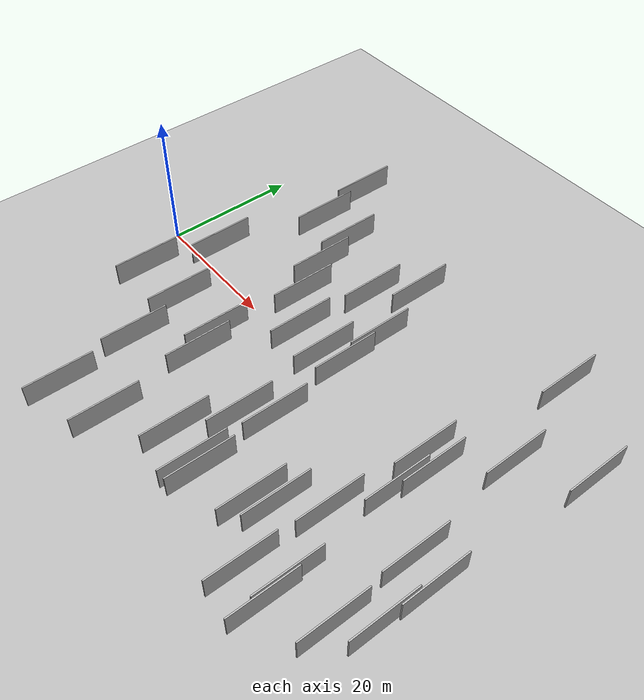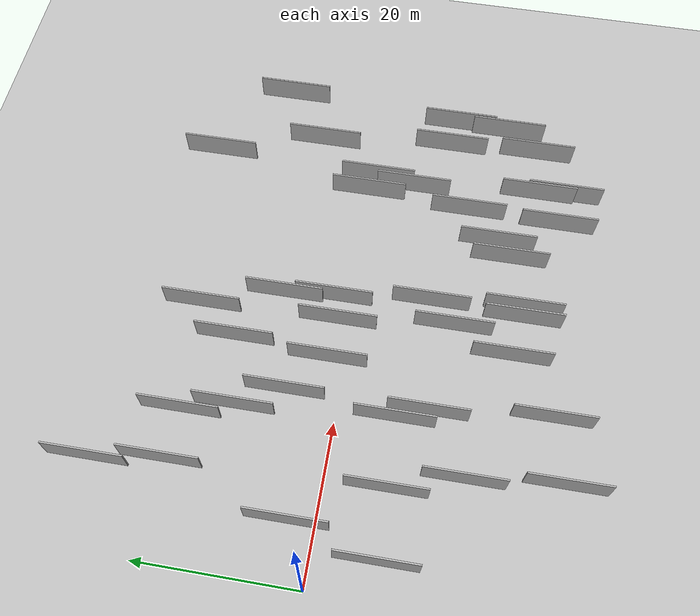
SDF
<?xml version="1.0" encoding="utf-8"?>

<sdf version="1.6">

   <world name="default">

      <gui fullscreen="0">

         <camera name="user_camera">

            <pose>-15 0 4.57585 0 0 0</pose>

            <view_controller>orbit</view_controller>

         </camera>

      </gui>

      <scene>

         <sky>

           <clouds>

             <speed>12</speed>

           </clouds>

         </sky>

         <ambient>0.4 0.4 0.4 1</ambient>

         <background>0.7 0.7 0.7 1</background>

         <shadows>1</shadows>

      </scene>

      <gravity>0 0 -9.8066</gravity>

      <magnetic_field>6e-06 2.3e-05 -4.2e-05</magnetic_field>

      <physics default="0" name="default_physics" type="ode">

         <ode>

            <solver>

               <type>quick</type>

               <iters>10</iters>

               <sor>1.0</sor>

               <use_dynamic_moi_rescaling>0</use_dynamic_moi_rescaling>

            </solver>

            <constraints>

               <cfm>0</cfm>

               <erp>0.2</erp>

               <contact_max_correcting_vel>100</contact_max_correcting_vel>

               <contact_surface_layer>0.001</contact_surface_layer>

            </constraints>

         </ode>

         <max_step_size>0.004</max_step_size>

         <real_time_factor>1</real_time_factor>

         <real_time_update_rate>250</real_time_update_rate>

      </physics>

      <light name="sun" type="directional">

         <cast_shadows>1</cast_shadows>

         <pose>0 0 10 0 0 0</pose>

         <diffuse>0.8 0.8 0.8 1</diffuse>

         <specular>0.2 0.2 0.2 1</specular>

         <attenuation>

            <range>1000</range>

            <constant>0.9</constant>

            <linear>0.01</linear>

            <quadratic>0.001</quadratic>

         </attenuation>

         <direction>-0.5 0.1 -0.9</direction>

      </light>

      <include>

         <name>ground_plane_1</name>

         <uri>model://HANNAS_ground_plane</uri>

         <pose>0 0 0  0 0 0</pose>

      </include>

      <include>

         <name>ground_plane_2</name>

         <uri>model://HANNAS_ground_plane</uri>

         <pose>100 0 0  0 0 0</pose>

      </include>

      <model name="HANNAS_wall_1">

         <static>1</static>

         <pose frame="">37.9664 -9.5065 0.0 0.000000 0.000000 1.570796</pose>

         <link name="link">

            <pose frame="">0 0 2.00 0 0 0</pose>

            <collision name="collision">

               <geometry>

                  <box>

                     <size>10.00 0.2 4.00</size>

                  </box>

               </geometry>

               <max_contacts>10</max_contacts>

               <surface>

                  <contact>

                     <ode/>

                  </contact>

                  <bounce/>

                  <friction>

                     <torsional>

                        <ode/>

                     </torsional>

                     <ode/>

                  </friction>

               </surface>

            </collision>

            <visual name="visual">

               <cast_shadows>0</cast_shadows>

               <geometry>

                  <box>

                     <size>10.00 0.2 4.00</size>

                  </box>

               </geometry>

               <material>

                  <script>

                     <uri>model://HANNAS_wall/materials/scripts</uri>

                     <uri>model://HANNAS_wall/materials/textures</uri>

                     <name>vrc/HANNAS_wall</name>

                  </script>

               </material>

            </visual>

            <self_collide>0</self_collide>

            <enable_wind>0</enable_wind>

            <kinematic>0</kinematic>

         </link>

      </model>

      <model name="HANNAS_wall_2">

         <static>1</static>

         <pose frame="">21.4314 -7.1170 0.0 0.000000 0.000000 1.570796</pose>

         <link name="link">

            <pose frame="">0 0 2.00 0 0 0</pose>

            <collision name="collision">

               <geometry>

                  <box>

                     <size>10.00 0.2 4.00</size>

                  </box>

               </geometry>

               <max_contacts>10</max_contacts>

               <surface>

                  <contact>

                     <ode/>

                  </contact>

                  <bounce/>

                  <friction>

                     <torsional>

                        <ode/>

                     </torsional>

                     <ode/>

                  </friction>

               </surface>

            </collision>

            <visual name="visual">

               <cast_shadows>0</cast_shadows>

               <geometry>

                  <box>

                     <size>10.00 0.2 4.00</size>

                  </box>

               </geometry>

               <material>

                  <script>

                     <uri>model://HANNAS_wall/materials/scripts</uri>

                     <uri>model://HANNAS_wall/materials/textures</uri>

                     <name>vrc/HANNAS_wall</name>

                  </script>

               </material>

            </visual>

            <self_collide>0</self_collide>

            <enable_wind>0</enable_wind>

            <kinematic>0</kinematic>

         </link>

      </model>

      <model name="HANNAS_wall_3">

         <static>1</static>

         <pose frame="">69.0836 14.1878 0.0 0.000000 0.000000 1.570796</pose>

         <link name="link">

            <pose frame="">0 0 2.00 0 0 0</pose>

            <collision name="collision">

               <geometry>

                  <box>

                     <size>10.00 0.2 4.00</size>

                  </box>

               </geometry>

               <max_contacts>10</max_contacts>

               <surface>

                  <contact>

                     <ode/>

                  </contact>

                  <bounce/>

                  <friction>

                     <torsional>

                        <ode/>

                     </torsional>

                     <ode/>

                  </friction>

               </surface>

            </collision>

            <visual name="visual">

               <cast_shadows>0</cast_shadows>

               <geometry>

                  <box>

                     <size>10.00 0.2 4.00</size>

                  </box>

               </geometry>

               <material>

                  <script>

                     <uri>model://HANNAS_wall/materials/scripts</uri>

                     <uri>model://HANNAS_wall/materials/textures</uri>

                     <name>vrc/HANNAS_wall</name>

                  </script>

               </material>

            </visual>

            <self_collide>0</self_collide>

            <enable_wind>0</enable_wind>

            <kinematic>0</kinematic>

         </link>

      </model>

      <model name="HANNAS_wall_4">

         <static>1</static>

         <pose frame="">32.8813 19.3636 0.0 0.000000 0.000000 1.570796</pose>

         <link name="link">

            <pose frame="">0 0 2.00 0 0 0</pose>

            <collision name="collision">

               <geometry>

                  <box>

                     <size>10.00 0.2 4.00</size>

                  </box>

               </geometry>

               <max_contacts>10</max_contacts>

               <surface>

                  <contact>

                     <ode/>

                  </contact>

                  <bounce/>

                  <friction>

                     <torsional>

                        <ode/>

                     </torsional>

                     <ode/>

                  </friction>

               </surface>

            </collision>

            <visual name="visual">

               <cast_shadows>0</cast_shadows>

               <geometry>

                  <box>

                     <size>10.00 0.2 4.00</size>

                  </box>

               </geometry>

               <material>

                  <script>

                     <uri>model://HANNAS_wall/materials/scripts</uri>

                     <uri>model://HANNAS_wall/materials/textures</uri>

                     <name>vrc/HANNAS_wall</name>

                  </script>

               </material>

            </visual>

            <self_collide>0</self_collide>

            <enable_wind>0</enable_wind>

            <kinematic>0</kinematic>

         </link>

      </model>

      <model name="HANNAS_wall_5">

         <static>1</static>

         <pose frame="">36.5954 2.9048 0.0 0.000000 0.000000 1.570796</pose>

         <link name="link">

            <pose frame="">0 0 2.00 0 0 0</pose>

            <collision name="collision">

               <geometry>

                  <box>

                     <size>10.00 0.2 4.00</size>

                  </box>

               </geometry>

               <max_contacts>10</max_contacts>

               <surface>

                  <contact>

                     <ode/>

                  </contact>

                  <bounce/>

                  <friction>

                     <torsional>

                        <ode/>

                     </torsional>

                     <ode/>

                  </friction>

               </surface>

            </collision>

            <visual name="visual">

               <cast_shadows>0</cast_shadows>

               <geometry>

                  <box>

                     <size>10.00 0.2 4.00</size>

                  </box>

               </geometry>

               <material>

                  <script>

                     <uri>model://HANNAS_wall/materials/scripts</uri>

                     <uri>model://HANNAS_wall/materials/textures</uri>

                     <name>vrc/HANNAS_wall</name>

                  </script>

               </material>

            </visual>

            <self_collide>0</self_collide>

            <enable_wind>0</enable_wind>

            <kinematic>0</kinematic>

         </link>

      </model>

      <model name="HANNAS_wall_6">

         <static>1</static>

         <pose frame="">52.7648 -12.7446 0.0 0.000000 0.000000 1.570796</pose>

         <link name="link">

            <pose frame="">0 0 2.00 0 0 0</pose>

            <collision name="collision">

               <geometry>

                  <box>

                     <size>10.00 0.2 4.00</size>

                  </box>

               </geometry>

               <max_contacts>10</max_contacts>

               <surface>

                  <contact>

                     <ode/>

                  </contact>

                  <bounce/>

                  <friction>

                     <torsional>

                        <ode/>

                     </torsional>

                     <ode/>

                  </friction>

               </surface>

            </collision>

            <visual name="visual">

               <cast_shadows>0</cast_shadows>

               <geometry>

                  <box>

                     <size>10.00 0.2 4.00</size>

                  </box>

               </geometry>

               <material>

                  <script>

                     <uri>model://HANNAS_wall/materials/scripts</uri>

                     <uri>model://HANNAS_wall/materials/textures</uri>

                     <name>vrc/HANNAS_wall</name>

                  </script>

               </material>

            </visual>

            <self_collide>0</self_collide>

            <enable_wind>0</enable_wind>

            <kinematic>0</kinematic>

         </link>

      </model>

      <model name="HANNAS_wall_7">

         <static>1</static>

         <pose frame="">28.8854 14.2022 0.0 0.000000 0.000000 1.570796</pose>

         <link name="link">

            <pose frame="">0 0 2.00 0 0 0</pose>

            <collision name="collision">

               <geometry>

                  <box>

                     <size>10.00 0.2 4.00</size>

                  </box>

               </geometry>

               <max_contacts>10</max_contacts>

               <surface>

                  <contact>

                     <ode/>

                  </contact>

                  <bounce/>

                  <friction>

                     <torsional>

                        <ode/>

                     </torsional>

                     <ode/>

                  </friction>

               </surface>

            </collision>

            <visual name="visual">

               <cast_shadows>0</cast_shadows>

               <geometry>

                  <box>

                     <size>10.00 0.2 4.00</size>

                  </box>

               </geometry>

               <material>

                  <script>

                     <uri>model://HANNAS_wall/materials/scripts</uri>

                     <uri>model://HANNAS_wall/materials/textures</uri>

                     <name>vrc/HANNAS_wall</name>

                  </script>

               </material>

            </visual>

            <self_collide>0</self_collide>

            <enable_wind>0</enable_wind>

            <kinematic>0</kinematic>

         </link>

      </model>

      <model name="HANNAS_wall_8">

         <static>1</static>

         <pose frame="">36.0626 9.2500 0.0 0.000000 0.000000 1.570796</pose>

         <link name="link">

            <pose frame="">0 0 2.00 0 0 0</pose>

            <collision name="collision">

               <geometry>

                  <box>

                     <size>10.00 0.2 4.00</size>

                  </box>

               </geometry>

               <max_contacts>10</max_contacts>

               <surface>

                  <contact>

                     <ode/>

                  </contact>

                  <bounce/>

                  <friction>

                     <torsional>

                        <ode/>

                     </torsional>

                     <ode/>

                  </friction>

               </surface>

            </collision>

            <visual name="visual">

               <cast_shadows>0</cast_shadows>

               <geometry>

                  <box>

                     <size>10.00 0.2 4.00</size>

                  </box>

               </geometry>

               <material>

                  <script>

                     <uri>model://HANNAS_wall/materials/scripts</uri>

                     <uri>model://HANNAS_wall/materials/textures</uri>

                     <name>vrc/HANNAS_wall</name>

                  </script>

               </material>

            </visual>

            <self_collide>0</self_collide>

            <enable_wind>0</enable_wind>

            <kinematic>0</kinematic>

         </link>

      </model>

      <model name="HANNAS_wall_9">

         <static>1</static>

         <pose frame="">63.4253 -9.2797 0.0 0.000000 0.000000 1.570796</pose>

         <link name="link">

            <pose frame="">0 0 2.00 0 0 0</pose>

            <collision name="collision">

               <geometry>

                  <box>

                     <size>10.00 0.2 4.00</size>

                  </box>

               </geometry>

               <max_contacts>10</max_contacts>

               <surface>

                  <contact>

                     <ode/>

                  </contact>

                  <bounce/>

                  <friction>

                     <torsional>

                        <ode/>

                     </torsional>

                     <ode/>

                  </friction>

               </surface>

            </collision>

            <visual name="visual">

               <cast_shadows>0</cast_shadows>

               <geometry>

                  <box>

                     <size>10.00 0.2 4.00</size>

                  </box>

               </geometry>

               <material>

                  <script>

                     <uri>model://HANNAS_wall/materials/scripts</uri>

                     <uri>model://HANNAS_wall/materials/textures</uri>

                     <name>vrc/HANNAS_wall</name>

                  </script>

               </material>

            </visual>

            <self_collide>0</self_collide>

            <enable_wind>0</enable_wind>

            <kinematic>0</kinematic>

         </link>

      </model>

      <model name="HANNAS_wall_10">

         <static>1</static>

         <pose frame="">22.8032 6.6137 0.0 0.000000 0.000000 1.570796</pose>

         <link name="link">

            <pose frame="">0 0 2.00 0 0 0</pose>

            <collision name="collision">

               <geometry>

                  <box>

                     <size>10.00 0.2 4.00</size>

                  </box>

               </geometry>

               <max_contacts>10</max_contacts>

               <surface>

                  <contact>

                     <ode/>

                  </contact>

                  <bounce/>

                  <friction>

                     <torsional>

                        <ode/>

                     </torsional>

                     <ode/>

                  </friction>

               </surface>

            </collision>

            <visual name="visual">

               <cast_shadows>0</cast_shadows>

               <geometry>

                  <box>

                     <size>10.00 0.2 4.00</size>

                  </box>

               </geometry>

               <material>

                  <script>

                     <uri>model://HANNAS_wall/materials/scripts</uri>

                     <uri>model://HANNAS_wall/materials/textures</uri>

                     <name>vrc/HANNAS_wall</name>

                  </script>

               </material>

            </visual>

            <self_collide>0</self_collide>

            <enable_wind>0</enable_wind>

            <kinematic>0</kinematic>

         </link>

      </model>

      <model name="HANNAS_wall_11">

         <static>1</static>

         <pose frame="">15.2261 -16.1198 0.0 0.000000 0.000000 1.570796</pose>

         <link name="link">

            <pose frame="">0 0 2.00 0 0 0</pose>

            <collision name="collision">

               <geometry>

                  <box>

                     <size>10.00 0.2 4.00</size>

                  </box>

               </geometry>

               <max_contacts>10</max_contacts>

               <surface>

                  <contact>

                     <ode/>

                  </contact>

                  <bounce/>

                  <friction>

                     <torsional>

                        <ode/>

                     </torsional>

                     <ode/>

                  </friction>

               </surface>

            </collision>

            <visual name="visual">

               <cast_shadows>0</cast_shadows>

               <geometry>

                  <box>

                     <size>10.00 0.2 4.00</size>

                  </box>

               </geometry>

               <material>

                  <script>

                     <uri>model://HANNAS_wall/materials/scripts</uri>

                     <uri>model://HANNAS_wall/materials/textures</uri>

                     <name>vrc/HANNAS_wall</name>

                  </script>

               </material>

            </visual>

            <self_collide>0</self_collide>

            <enable_wind>0</enable_wind>

            <kinematic>0</kinematic>

         </link>

      </model>

      <model name="HANNAS_wall_12">

         <static>1</static>

         <pose frame="">57.0256 -21.9118 0.0 0.000000 0.000000 1.570796</pose>

         <link name="link">

            <pose frame="">0 0 2.00 0 0 0</pose>

            <collision name="collision">

               <geometry>

                  <box>

                     <size>10.00 0.2 4.00</size>

                  </box>

               </geometry>

               <max_contacts>10</max_contacts>

               <surface>

                  <contact>

                     <ode/>

                  </contact>

                  <bounce/>

                  <friction>

                     <torsional>

                        <ode/>

                     </torsional>

                     <ode/>

                  </friction>

               </surface>

            </collision>

            <visual name="visual">

               <cast_shadows>0</cast_shadows>

               <geometry>

                  <box>

                     <size>10.00 0.2 4.00</size>

                  </box>

               </geometry>

               <material>

                  <script>

                     <uri>model://HANNAS_wall/materials/scripts</uri>

                     <uri>model://HANNAS_wall/materials/textures</uri>

                     <name>vrc/HANNAS_wall</name>

                  </script>

               </material>

            </visual>

            <self_collide>0</self_collide>

            <enable_wind>0</enable_wind>

            <kinematic>0</kinematic>

         </link>

      </model>

      <model name="HANNAS_wall_13">

         <static>1</static>

         <pose frame="">48.3799 -17.0865 0.0 0.000000 0.000000 1.570796</pose>

         <link name="link">

            <pose frame="">0 0 2.00 0 0 0</pose>

            <collision name="collision">

               <geometry>

                  <box>

                     <size>10.00 0.2 4.00</size>

                  </box>

               </geometry>

               <max_contacts>10</max_contacts>

               <surface>

                  <contact>

                     <ode/>

                  </contact>

                  <bounce/>

                  <friction>

                     <torsional>

                        <ode/>

                     </torsional>

                     <ode/>

                  </friction>

               </surface>

            </collision>

            <visual name="visual">

               <cast_shadows>0</cast_shadows>

               <geometry>

                  <box>

                     <size>10.00 0.2 4.00</size>

                  </box>

               </geometry>

               <material>

                  <script>

                     <uri>model://HANNAS_wall/materials/scripts</uri>

                     <uri>model://HANNAS_wall/materials/textures</uri>

                     <name>vrc/HANNAS_wall</name>

                  </script>

               </material>

            </visual>

            <self_collide>0</self_collide>

            <enable_wind>0</enable_wind>

            <kinematic>0</kinematic>

         </link>

      </model>

      <model name="HANNAS_wall_14">

         <static>1</static>

         <pose frame="">27.9099 2.2242 0.0 0.000000 0.000000 1.570796</pose>

         <link name="link">

            <pose frame="">0 0 2.00 0 0 0</pose>

            <collision name="collision">

               <geometry>

                  <box>

                     <size>10.00 0.2 4.00</size>

                  </box>

               </geometry>

               <max_contacts>10</max_contacts>

               <surface>

                  <contact>

                     <ode/>

                  </contact>

                  <bounce/>

                  <friction>

                     <torsional>

                        <ode/>

                     </torsional>

                     <ode/>

                  </friction>

               </surface>

            </collision>

            <visual name="visual">

               <cast_shadows>0</cast_shadows>

               <geometry>

                  <box>

                     <size>10.00 0.2 4.00</size>

                  </box>

               </geometry>

               <material>

                  <script>

                     <uri>model://HANNAS_wall/materials/scripts</uri>

                     <uri>model://HANNAS_wall/materials/textures</uri>

                     <name>vrc/HANNAS_wall</name>

                  </script>

               </material>

            </visual>

            <self_collide>0</self_collide>

            <enable_wind>0</enable_wind>

            <kinematic>0</kinematic>

         </link>

      </model>

      <model name="HANNAS_wall_15">

         <static>1</static>

         <pose frame="">19.8263 12.2724 0.0 0.000000 0.000000 1.570796</pose>

         <link name="link">

            <pose frame="">0 0 2.00 0 0 0</pose>

            <collision name="collision">

               <geometry>

                  <box>

                     <size>10.00 0.2 4.00</size>

                  </box>

               </geometry>

               <max_contacts>10</max_contacts>

               <surface>

                  <contact>

                     <ode/>

                  </contact>

                  <bounce/>

                  <friction>

                     <torsional>

                        <ode/>

                     </torsional>

                     <ode/>

                  </friction>

               </surface>

            </collision>

            <visual name="visual">

               <cast_shadows>0</cast_shadows>

               <geometry>

                  <box>

                     <size>10.00 0.2 4.00</size>

                  </box>

               </geometry>

               <material>

                  <script>

                     <uri>model://HANNAS_wall/materials/scripts</uri>

                     <uri>model://HANNAS_wall/materials/textures</uri>

                     <name>vrc/HANNAS_wall</name>

                  </script>

               </material>

            </visual>

            <self_collide>0</self_collide>

            <enable_wind>0</enable_wind>

            <kinematic>0</kinematic>

         </link>

      </model>

      <model name="HANNAS_wall_16">

         <static>1</static>

         <pose frame="">24.5180 -25.8922 0.0 0.000000 0.000000 1.570796</pose>

         <link name="link">

            <pose frame="">0 0 2.00 0 0 0</pose>

            <collision name="collision">

               <geometry>

                  <box>

                     <size>10.00 0.2 4.00</size>

                  </box>

               </geometry>

               <max_contacts>10</max_contacts>

               <surface>

                  <contact>

                     <ode/>

                  </contact>

                  <bounce/>

                  <friction>

                     <torsional>

                        <ode/>

                     </torsional>

                     <ode/>

                  </friction>

               </surface>

            </collision>

            <visual name="visual">

               <cast_shadows>0</cast_shadows>

               <geometry>

                  <box>

                     <size>10.00 0.2 4.00</size>

                  </box>

               </geometry>

               <material>

                  <script>

                     <uri>model://HANNAS_wall/materials/scripts</uri>

                     <uri>model://HANNAS_wall/materials/textures</uri>

                     <name>vrc/HANNAS_wall</name>

                  </script>

               </material>

            </visual>

            <self_collide>0</self_collide>

            <enable_wind>0</enable_wind>

            <kinematic>0</kinematic>

         </link>

      </model>

      <model name="HANNAS_wall_17">

         <static>1</static>

         <pose frame="">57.3947 -25.4626 0.0 0.000000 0.000000 1.570796</pose>

         <link name="link">

            <pose frame="">0 0 2.00 0 0 0</pose>

            <collision name="collision">

               <geometry>

                  <box>

                     <size>10.00 0.2 4.00</size>

                  </box>

               </geometry>

               <max_contacts>10</max_contacts>

               <surface>

                  <contact>

                     <ode/>

                  </contact>

                  <bounce/>

                  <friction>

                     <torsional>

                        <ode/>

                     </torsional>

                     <ode/>

                  </friction>

               </surface>

            </collision>

            <visual name="visual">

               <cast_shadows>0</cast_shadows>

               <geometry>

                  <box>

                     <size>10.00 0.2 4.00</size>

                  </box>

               </geometry>

               <material>

                  <script>

                     <uri>model://HANNAS_wall/materials/scripts</uri>

                     <uri>model://HANNAS_wall/materials/textures</uri>

                     <name>vrc/HANNAS_wall</name>

                  </script>

               </material>

            </visual>

            <self_collide>0</self_collide>

            <enable_wind>0</enable_wind>

            <kinematic>0</kinematic>

         </link>

      </model>

      <model name="HANNAS_wall_18">

         <static>1</static>

         <pose frame="">22.9341 -10.9806 0.0 0.000000 0.000000 1.570796</pose>

         <link name="link">

            <pose frame="">0 0 2.00 0 0 0</pose>

            <collision name="collision">

               <geometry>

                  <box>

                     <size>10.00 0.2 4.00</size>

                  </box>

               </geometry>

               <max_contacts>10</max_contacts>

               <surface>

                  <contact>

                     <ode/>

                  </contact>

                  <bounce/>

                  <friction>

                     <torsional>

                        <ode/>

                     </torsional>

                     <ode/>

                  </friction>

               </surface>

            </collision>

            <visual name="visual">

               <cast_shadows>0</cast_shadows>

               <geometry>

                  <box>

                     <size>10.00 0.2 4.00</size>

                  </box>

               </geometry>

               <material>

                  <script>

                     <uri>model://HANNAS_wall/materials/scripts</uri>

                     <uri>model://HANNAS_wall/materials/textures</uri>

                     <name>vrc/HANNAS_wall</name>

                  </script>

               </material>

            </visual>

            <self_collide>0</self_collide>

            <enable_wind>0</enable_wind>

            <kinematic>0</kinematic>

         </link>

      </model>

      <model name="HANNAS_wall_19">

         <static>1</static>

         <pose frame="">38.9378 -21.2688 0.0 0.000000 0.000000 1.570796</pose>

         <link name="link">

            <pose frame="">0 0 2.00 0 0 0</pose>

            <collision name="collision">

               <geometry>

                  <box>

                     <size>10.00 0.2 4.00</size>

                  </box>

               </geometry>

               <max_contacts>10</max_contacts>

               <surface>

                  <contact>

                     <ode/>

                  </contact>

                  <bounce/>

                  <friction>

                     <torsional>

                        <ode/>

                     </torsional>

                     <ode/>

                  </friction>

               </surface>

            </collision>

            <visual name="visual">

               <cast_shadows>0</cast_shadows>

               <geometry>

                  <box>

                     <size>10.00 0.2 4.00</size>

                  </box>

               </geometry>

               <material>

                  <script>

                     <uri>model://HANNAS_wall/materials/scripts</uri>

                     <uri>model://HANNAS_wall/materials/textures</uri>

                     <name>vrc/HANNAS_wall</name>

                  </script>

               </material>

            </visual>

            <self_collide>0</self_collide>

            <enable_wind>0</enable_wind>

            <kinematic>0</kinematic>

         </link>

      </model>

      <model name="HANNAS_wall_20">

         <static>1</static>

         <pose frame="">56.2829 0.1428 0.0 0.000000 0.000000 1.570796</pose>

         <link name="link">

            <pose frame="">0 0 2.00 0 0 0</pose>

            <collision name="collision">

               <geometry>

                  <box>

                     <size>10.00 0.2 4.00</size>

                  </box>

               </geometry>

               <max_contacts>10</max_contacts>

               <surface>

                  <contact>

                     <ode/>

                  </contact>

                  <bounce/>

                  <friction>

                     <torsional>

                        <ode/>

                     </torsional>

                     <ode/>

                  </friction>

               </surface>

            </collision>

            <visual name="visual">

               <cast_shadows>0</cast_shadows>

               <geometry>

                  <box>

                     <size>10.00 0.2 4.00</size>

                  </box>

               </geometry>

               <material>

                  <script>

                     <uri>model://HANNAS_wall/materials/scripts</uri>

                     <uri>model://HANNAS_wall/materials/textures</uri>

                     <name>vrc/HANNAS_wall</name>

                  </script>

               </material>

            </visual>

            <self_collide>0</self_collide>

            <enable_wind>0</enable_wind>

            <kinematic>0</kinematic>

         </link>

      </model>

      <model name="HANNAS_wall_21">

         <static>1</static>

         <pose frame="">18.2750 18.5518 0.0 0.000000 0.000000 1.570796</pose>

         <link name="link">

            <pose frame="">0 0 2.00 0 0 0</pose>

            <collision name="collision">

               <geometry>

                  <box>

                     <size>10.00 0.2 4.00</size>

                  </box>

               </geometry>

               <max_contacts>10</max_contacts>

               <surface>

                  <contact>

                     <ode/>

                  </contact>

                  <bounce/>

                  <friction>

                     <torsional>

                        <ode/>

                     </torsional>

                     <ode/>

                  </friction>

               </surface>

            </collision>

            <visual name="visual">

               <cast_shadows>0</cast_shadows>

               <geometry>

                  <box>

                     <size>10.00 0.2 4.00</size>

                  </box>

               </geometry>

               <material>

                  <script>

                     <uri>model://HANNAS_wall/materials/scripts</uri>

                     <uri>model://HANNAS_wall/materials/textures</uri>

                     <name>vrc/HANNAS_wall</name>

                  </script>

               </material>

            </visual>

            <self_collide>0</self_collide>

            <enable_wind>0</enable_wind>

            <kinematic>0</kinematic>

         </link>

      </model>

      <model name="HANNAS_wall_22">

         <static>1</static>

         <pose frame="">10.6007 27.9622 0.0 0.000000 0.000000 1.570796</pose>

         <link name="link">

            <pose frame="">0 0 2.00 0 0 0</pose>

            <collision name="collision">

               <geometry>

                  <box>

                     <size>10.00 0.2 4.00</size>

                  </box>

               </geometry>

               <max_contacts>10</max_contacts>

               <surface>

                  <contact>

                     <ode/>

                  </contact>

                  <bounce/>

                  <friction>

                     <torsional>

                        <ode/>

                     </torsional>

                     <ode/>

                  </friction>

               </surface>

            </collision>

            <visual name="visual">

               <cast_shadows>0</cast_shadows>

               <geometry>

                  <box>

                     <size>10.00 0.2 4.00</size>

                  </box>

               </geometry>

               <material>

                  <script>

                     <uri>model://HANNAS_wall/materials/scripts</uri>

                     <uri>model://HANNAS_wall/materials/textures</uri>

                     <name>vrc/HANNAS_wall</name>

                  </script>

               </material>

            </visual>

            <self_collide>0</self_collide>

            <enable_wind>0</enable_wind>

            <kinematic>0</kinematic>

         </link>

      </model>

      <model name="HANNAS_wall_23">

         <static>1</static>

         <pose frame="">53.8063 1.0338 0.0 0.000000 0.000000 1.570796</pose>

         <link name="link">

            <pose frame="">0 0 2.00 0 0 0</pose>

            <collision name="collision">

               <geometry>

                  <box>

                     <size>10.00 0.2 4.00</size>

                  </box>

               </geometry>

               <max_contacts>10</max_contacts>

               <surface>

                  <contact>

                     <ode/>

                  </contact>

                  <bounce/>

                  <friction>

                     <torsional>

                        <ode/>

                     </torsional>

                     <ode/>

                  </friction>

               </surface>

            </collision>

            <visual name="visual">

               <cast_shadows>0</cast_shadows>

               <geometry>

                  <box>

                     <size>10.00 0.2 4.00</size>

                  </box>

               </geometry>

               <material>

                  <script>

                     <uri>model://HANNAS_wall/materials/scripts</uri>

                     <uri>model://HANNAS_wall/materials/textures</uri>

                     <name>vrc/HANNAS_wall</name>

                  </script>

               </material>

            </visual>

            <self_collide>0</self_collide>

            <enable_wind>0</enable_wind>

            <kinematic>0</kinematic>

         </link>

      </model>

      <model name="HANNAS_wall_24">

         <static>1</static>

         <pose frame="">34.9339 -12.7395 0.0 0.000000 0.000000 1.570796</pose>

         <link name="link">

            <pose frame="">0 0 2.00 0 0 0</pose>

            <collision name="collision">

               <geometry>

                  <box>

                     <size>10.00 0.2 4.00</size>

                  </box>

               </geometry>

               <max_contacts>10</max_contacts>

               <surface>

                  <contact>

                     <ode/>

                  </contact>

                  <bounce/>

                  <friction>

                     <torsional>

                        <ode/>

                     </torsional>

                     <ode/>

                  </friction>

               </surface>

            </collision>

            <visual name="visual">

               <cast_shadows>0</cast_shadows>

               <geometry>

                  <box>

                     <size>10.00 0.2 4.00</size>

                  </box>

               </geometry>

               <material>

                  <script>

                     <uri>model://HANNAS_wall/materials/scripts</uri>

                     <uri>model://HANNAS_wall/materials/textures</uri>

                     <name>vrc/HANNAS_wall</name>

                  </script>

               </material>

            </visual>

            <self_collide>0</self_collide>

            <enable_wind>0</enable_wind>

            <kinematic>0</kinematic>

         </link>

      </model>

      <model name="HANNAS_wall_25">

         <static>1</static>

         <pose frame="">67.5319 -10.1110 0.0 0.000000 0.000000 1.570796</pose>

         <link name="link">

            <pose frame="">0 0 2.00 0 0 0</pose>

            <collision name="collision">

               <geometry>

                  <box>

                     <size>10.00 0.2 4.00</size>

                  </box>

               </geometry>

               <max_contacts>10</max_contacts>

               <surface>

                  <contact>

                     <ode/>

                  </contact>

                  <bounce/>

                  <friction>

                     <torsional>

                        <ode/>

                     </torsional>

                     <ode/>

                  </friction>

               </surface>

            </collision>

            <visual name="visual">

               <cast_shadows>0</cast_shadows>

               <geometry>

                  <box>

                     <size>10.00 0.2 4.00</size>

                  </box>

               </geometry>

               <material>

                  <script>

                     <uri>model://HANNAS_wall/materials/scripts</uri>

                     <uri>model://HANNAS_wall/materials/textures</uri>

                     <name>vrc/HANNAS_wall</name>

                  </script>

               </material>

            </visual>

            <self_collide>0</self_collide>

            <enable_wind>0</enable_wind>

            <kinematic>0</kinematic>

         </link>

      </model>

      <model name="HANNAS_wall_26">

         <static>1</static>

         <pose frame="">33.3478 1.8602 0.0 0.000000 0.000000 1.570796</pose>

         <link name="link">

            <pose frame="">0 0 2.00 0 0 0</pose>

            <collision name="collision">

               <geometry>

                  <box>

                     <size>10.00 0.2 4.00</size>

                  </box>

               </geometry>

               <max_contacts>10</max_contacts>

               <surface>

                  <contact>

                     <ode/>

                  </contact>

                  <bounce/>

                  <friction>

                     <torsional>

                        <ode/>

                     </torsional>

                     <ode/>

                  </friction>

               </surface>

            </collision>

            <visual name="visual">

               <cast_shadows>0</cast_shadows>

               <geometry>

                  <box>

                     <size>10.00 0.2 4.00</size>

                  </box>

               </geometry>

               <material>

                  <script>

                     <uri>model://HANNAS_wall/materials/scripts</uri>

                     <uri>model://HANNAS_wall/materials/textures</uri>

                     <name>vrc/HANNAS_wall</name>

                  </script>

               </material>

            </visual>

            <self_collide>0</self_collide>

            <enable_wind>0</enable_wind>

            <kinematic>0</kinematic>

         </link>

      </model>

      <model name="HANNAS_wall_27">

         <static>1</static>

         <pose frame="">55.4865 -4.9092 0.0 0.000000 0.000000 1.570796</pose>

         <link name="link">

            <pose frame="">0 0 2.00 0 0 0</pose>

            <collision name="collision">

               <geometry>

                  <box>

                     <size>10.00 0.2 4.00</size>

                  </box>

               </geometry>

               <max_contacts>10</max_contacts>

               <surface>

                  <contact>

                     <ode/>

                  </contact>

                  <bounce/>

                  <friction>

                     <torsional>

                        <ode/>

                     </torsional>

                     <ode/>

                  </friction>

               </surface>

            </collision>

            <visual name="visual">

               <cast_shadows>0</cast_shadows>

               <geometry>

                  <box>

                     <size>10.00 0.2 4.00</size>

                  </box>

               </geometry>

               <material>

                  <script>

                     <uri>model://HANNAS_wall/materials/scripts</uri>

                     <uri>model://HANNAS_wall/materials/textures</uri>

                     <name>vrc/HANNAS_wall</name>

                  </script>

               </material>

            </visual>

            <self_collide>0</self_collide>

            <enable_wind>0</enable_wind>

            <kinematic>0</kinematic>

         </link>

      </model>

      <model name="HANNAS_wall_28">

         <static>1</static>

         <pose frame="">63.9563 -21.2435 0.0 0.000000 0.000000 1.570796</pose>

         <link name="link">

            <pose frame="">0 0 2.00 0 0 0</pose>

            <collision name="collision">

               <geometry>

                  <box>

                     <size>10.00 0.2 4.00</size>

                  </box>

               </geometry>

               <max_contacts>10</max_contacts>

               <surface>

                  <contact>

                     <ode/>

                  </contact>

                  <bounce/>

                  <friction>

                     <torsional>

                        <ode/>

                     </torsional>

                     <ode/>

                  </friction>

               </surface>

            </collision>

            <visual name="visual">

               <cast_shadows>0</cast_shadows>

               <geometry>

                  <box>

                     <size>10.00 0.2 4.00</size>

                  </box>

               </geometry>

               <material>

                  <script>

                     <uri>model://HANNAS_wall/materials/scripts</uri>

                     <uri>model://HANNAS_wall/materials/textures</uri>

                     <name>vrc/HANNAS_wall</name>

                  </script>

               </material>

            </visual>

            <self_collide>0</self_collide>

            <enable_wind>0</enable_wind>

            <kinematic>0</kinematic>

         </link>

      </model>

      <model name="HANNAS_wall_29">

         <static>1</static>

         <pose frame="">61.4553 8.4777 0.0 0.000000 0.000000 1.570796</pose>

         <link name="link">

            <pose frame="">0 0 2.00 0 0 0</pose>

            <collision name="collision">

               <geometry>

                  <box>

                     <size>10.00 0.2 4.00</size>

                  </box>

               </geometry>

               <max_contacts>10</max_contacts>

               <surface>

                  <contact>

                     <ode/>

                  </contact>

                  <bounce/>

                  <friction>

                     <torsional>

                        <ode/>

                     </torsional>

                     <ode/>

                  </friction>

               </surface>

            </collision>

            <visual name="visual">

               <cast_shadows>0</cast_shadows>

               <geometry>

                  <box>

                     <size>10.00 0.2 4.00</size>

                  </box>

               </geometry>

               <material>

                  <script>

                     <uri>model://HANNAS_wall/materials/scripts</uri>

                     <uri>model://HANNAS_wall/materials/textures</uri>

                     <name>vrc/HANNAS_wall</name>

                  </script>

               </material>

            </visual>

            <self_collide>0</self_collide>

            <enable_wind>0</enable_wind>

            <kinematic>0</kinematic>

         </link>

      </model>

      <model name="HANNAS_wall_30">

         <static>1</static>

         <pose frame="">31.9102 -20.3189 0.0 0.000000 0.000000 1.570796</pose>

         <link name="link">

            <pose frame="">0 0 2.00 0 0 0</pose>

            <collision name="collision">

               <geometry>

                  <box>

                     <size>10.00 0.2 4.00</size>

                  </box>

               </geometry>

               <max_contacts>10</max_contacts>

               <surface>

                  <contact>

                     <ode/>

                  </contact>

                  <bounce/>

                  <friction>

                     <torsional>

                        <ode/>

                     </torsional>

                     <ode/>

                  </friction>

               </surface>

            </collision>

            <visual name="visual">

               <cast_shadows>0</cast_shadows>

               <geometry>

                  <box>

                     <size>10.00 0.2 4.00</size>

                  </box>

               </geometry>

               <material>

                  <script>

                     <uri>model://HANNAS_wall/materials/scripts</uri>

                     <uri>model://HANNAS_wall/materials/textures</uri>

                     <name>vrc/HANNAS_wall</name>

                  </script>

               </material>

            </visual>

            <self_collide>0</self_collide>

            <enable_wind>0</enable_wind>

            <kinematic>0</kinematic>

         </link>

      </model>

      <model name="HANNAS_wall_31">

         <static>1</static>

         <pose frame="">4.2340 -7.5186 0.0 0.000000 0.000000 1.570796</pose>

         <link name="link">

            <pose frame="">0 0 2.00 0 0 0</pose>

            <collision name="collision">

               <geometry>

                  <box>

                     <size>10.00 0.2 4.00</size>

                  </box>

               </geometry>

               <max_contacts>10</max_contacts>

               <surface>

                  <contact>

                     <ode/>

                  </contact>

                  <bounce/>

                  <friction>

                     <torsional>

                        <ode/>

                     </torsional>

                     <ode/>

                  </friction>

               </surface>

            </collision>

            <visual name="visual">

               <cast_shadows>0</cast_shadows>

               <geometry>

                  <box>

                     <size>10.00 0.2 4.00</size>

                  </box>

               </geometry>

               <material>

                  <script>

                     <uri>model://HANNAS_wall/materials/scripts</uri>

                     <uri>model://HANNAS_wall/materials/textures</uri>

                     <name>vrc/HANNAS_wall</name>

                  </script>

               </material>

            </visual>

            <self_collide>0</self_collide>

            <enable_wind>0</enable_wind>

            <kinematic>0</kinematic>

         </link>

      </model>

      <model name="HANNAS_wall_32">

         <static>1</static>

         <pose frame="">11.8212 19.3118 0.0 0.000000 0.000000 1.570796</pose>

         <link name="link">

            <pose frame="">0 0 2.00 0 0 0</pose>

            <collision name="collision">

               <geometry>

                  <box>

                     <size>10.00 0.2 4.00</size>

                  </box>

               </geometry>

               <max_contacts>10</max_contacts>

               <surface>

                  <contact>

                     <ode/>

                  </contact>

                  <bounce/>

                  <friction>

                     <torsional>

                        <ode/>

                     </torsional>

                     <ode/>

                  </friction>

               </surface>

            </collision>

            <visual name="visual">

               <cast_shadows>0</cast_shadows>

               <geometry>

                  <box>

                     <size>10.00 0.2 4.00</size>

                  </box>

               </geometry>

               <material>

                  <script>

                     <uri>model://HANNAS_wall/materials/scripts</uri>

                     <uri>model://HANNAS_wall/materials/textures</uri>

                     <name>vrc/HANNAS_wall</name>

                  </script>

               </material>

            </visual>

            <self_collide>0</self_collide>

            <enable_wind>0</enable_wind>

            <kinematic>0</kinematic>

         </link>

      </model>

      <model name="HANNAS_wall_33">

         <static>1</static>

         <pose frame="">67.1462 -17.0167 0.0 0.000000 0.000000 1.570796</pose>

         <link name="link">

            <pose frame="">0 0 2.00 0 0 0</pose>

            <collision name="collision">

               <geometry>

                  <box>

                     <size>10.00 0.2 4.00</size>

                  </box>

               </geometry>

               <max_contacts>10</max_contacts>

               <surface>

                  <contact>

                     <ode/>

                  </contact>

                  <bounce/>

                  <friction>

                     <torsional>

                        <ode/>

                     </torsional>

                     <ode/>

                  </friction>

               </surface>

            </collision>

            <visual name="visual">

               <cast_shadows>0</cast_shadows>

               <geometry>

                  <box>

                     <size>10.00 0.2 4.00</size>

                  </box>

               </geometry>

               <material>

                  <script>

                     <uri>model://HANNAS_wall/materials/scripts</uri>

                     <uri>model://HANNAS_wall/materials/textures</uri>

                     <name>vrc/HANNAS_wall</name>

                  </script>

               </material>

            </visual>

            <self_collide>0</self_collide>

            <enable_wind>0</enable_wind>

            <kinematic>0</kinematic>

         </link>

      </model>

      <model name="HANNAS_wall_34">

         <static>1</static>

         <pose frame="">52.4287 -24.8871 0.0 0.000000 0.000000 1.570796</pose>

         <link name="link">

            <pose frame="">0 0 2.00 0 0 0</pose>

            <collision name="collision">

               <geometry>

                  <box>

                     <size>10.00 0.2 4.00</size>

                  </box>

               </geometry>

               <max_contacts>10</max_contacts>

               <surface>

                  <contact>

                     <ode/>

                  </contact>

                  <bounce/>

                  <friction>

                     <torsional>

                        <ode/>

                     </torsional>

                     <ode/>

                  </friction>

               </surface>

            </collision>

            <visual name="visual">

               <cast_shadows>0</cast_shadows>

               <geometry>

                  <box>

                     <size>10.00 0.2 4.00</size>

                  </box>

               </geometry>

               <material>

                  <script>

                     <uri>model://HANNAS_wall/materials/scripts</uri>

                     <uri>model://HANNAS_wall/materials/textures</uri>

                     <name>vrc/HANNAS_wall</name>

                  </script>

               </material>

            </visual>

            <self_collide>0</self_collide>

            <enable_wind>0</enable_wind>

            <kinematic>0</kinematic>

         </link>

      </model>

      <model name="HANNAS_wall_35">

         <static>1</static>

         <pose frame="">37.4711 -21.3480 0.0 0.000000 0.000000 1.570796</pose>

         <link name="link">

            <pose frame="">0 0 2.00 0 0 0</pose>

            <collision name="collision">

               <geometry>

                  <box>

                     <size>10.00 0.2 4.00</size>

                  </box>

               </geometry>

               <max_contacts>10</max_contacts>

               <surface>

                  <contact>

                     <ode/>

                  </contact>

                  <bounce/>

                  <friction>

                     <torsional>

                        <ode/>

                     </torsional>

                     <ode/>

                  </friction>

               </surface>

            </collision>

            <visual name="visual">

               <cast_shadows>0</cast_shadows>

               <geometry>

                  <box>

                     <size>10.00 0.2 4.00</size>

                  </box>

               </geometry>

               <material>

                  <script>

                     <uri>model://HANNAS_wall/materials/scripts</uri>

                     <uri>model://HANNAS_wall/materials/textures</uri>

                     <name>vrc/HANNAS_wall</name>

                  </script>

               </material>

            </visual>

            <self_collide>0</self_collide>

            <enable_wind>0</enable_wind>

            <kinematic>0</kinematic>

         </link>

      </model>

      <model name="HANNAS_wall_36">

         <static>1</static>

         <pose frame="">46.0577 -18.8911 0.0 0.000000 0.000000 1.570796</pose>

         <link name="link">

            <pose frame="">0 0 2.00 0 0 0</pose>

            <collision name="collision">

               <geometry>

                  <box>

                     <size>10.00 0.2 4.00</size>

                  </box>

               </geometry>

               <max_contacts>10</max_contacts>

               <surface>

                  <contact>

                     <ode/>

                  </contact>

                  <bounce/>

                  <friction>

                     <torsional>

                        <ode/>

                     </torsional>

                     <ode/>

                  </friction>

               </surface>

            </collision>

            <visual name="visual">

               <cast_shadows>0</cast_shadows>

               <geometry>

                  <box>

                     <size>10.00 0.2 4.00</size>

                  </box>

               </geometry>

               <material>

                  <script>

                     <uri>model://HANNAS_wall/materials/scripts</uri>

                     <uri>model://HANNAS_wall/materials/textures</uri>

                     <name>vrc/HANNAS_wall</name>

                  </script>

               </material>

            </visual>

            <self_collide>0</self_collide>

            <enable_wind>0</enable_wind>

            <kinematic>0</kinematic>

         </link>

      </model>

      <model name="HANNAS_wall_37">

         <static>1</static>

         <pose frame="">7.1320 3.2762 0.0 0.000000 0.000000 1.570796</pose>

         <link name="link">

            <pose frame="">0 0 2.00 0 0 0</pose>

            <collision name="collision">

               <geometry>

                  <box>

                     <size>10.00 0.2 4.00</size>

                  </box>

               </geometry>

               <max_contacts>10</max_contacts>

               <surface>

                  <contact>

                     <ode/>

                  </contact>

                  <bounce/>

                  <friction>

                     <torsional>

                        <ode/>

                     </torsional>

                     <ode/>

                  </friction>

               </surface>

            </collision>

            <visual name="visual">

               <cast_shadows>0</cast_shadows>

               <geometry>

                  <box>

                     <size>10.00 0.2 4.00</size>

                  </box>

               </geometry>

               <material>

                  <script>

                     <uri>model://HANNAS_wall/materials/scripts</uri>

                     <uri>model://HANNAS_wall/materials/textures</uri>

                     <name>vrc/HANNAS_wall</name>

                  </script>

               </material>

            </visual>

            <self_collide>0</self_collide>

            <enable_wind>0</enable_wind>

            <kinematic>0</kinematic>

         </link>

      </model>

      <model name="HANNAS_wall_38">

         <static>1</static>

         <pose frame="">12.6733 -7.3762 0.0 0.000000 0.000000 1.570796</pose>

         <link name="link">

            <pose frame="">0 0 2.00 0 0 0</pose>

            <collision name="collision">

               <geometry>

                  <box>

                     <size>10.00 0.2 4.00</size>

                  </box>

               </geometry>

               <max_contacts>10</max_contacts>

               <surface>

                  <contact>

                     <ode/>

                  </contact>

                  <bounce/>

                  <friction>

                     <torsional>

                        <ode/>

                     </torsional>

                     <ode/>

                  </friction>

               </surface>

            </collision>

            <visual name="visual">

               <cast_shadows>0</cast_shadows>

               <geometry>

                  <box>

                     <size>10.00 0.2 4.00</size>

                  </box>

               </geometry>

               <material>

                  <script>

                     <uri>model://HANNAS_wall/materials/scripts</uri>

                     <uri>model://HANNAS_wall/materials/textures</uri>

                     <name>vrc/HANNAS_wall</name>

                  </script>

               </material>

            </visual>

            <self_collide>0</self_collide>

            <enable_wind>0</enable_wind>

            <kinematic>0</kinematic>

         </link>

      </model>

      <model name="HANNAS_wall_39">

         <static>1</static>

         <pose frame="">16.4798 -27.9899 0.0 0.000000 0.000000 1.570796</pose>

         <link name="link">

            <pose frame="">0 0 2.00 0 0 0</pose>

            <collision name="collision">

               <geometry>

                  <box>

                     <size>10.00 0.2 4.00</size>

                  </box>

               </geometry>

               <max_contacts>10</max_contacts>

               <surface>

                  <contact>

                     <ode/>

                  </contact>

                  <bounce/>

                  <friction>

                     <torsional>

                        <ode/>

                     </torsional>

                     <ode/>

                  </friction>

               </surface>

            </collision>

            <visual name="visual">

               <cast_shadows>0</cast_shadows>

               <geometry>

                  <box>

                     <size>10.00 0.2 4.00</size>

                  </box>

               </geometry>

               <material>

                  <script>

                     <uri>model://HANNAS_wall/materials/scripts</uri>

                     <uri>model://HANNAS_wall/materials/textures</uri>

                     <name>vrc/HANNAS_wall</name>

                  </script>

               </material>

            </visual>

            <self_collide>0</self_collide>

            <enable_wind>0</enable_wind>

            <kinematic>0</kinematic>

         </link>

      </model>

      <model name="HANNAS_wall_40">

         <static>1</static>

         <pose frame="">57.2700 22.5719 0.0 0.000000 0.000000 1.570796</pose>

         <link name="link">

            <pose frame="">0 0 2.00 0 0 0</pose>

            <collision name="collision">

               <geometry>

                  <box>

                     <size>10.00 0.2 4.00</size>

                  </box>

               </geometry>

               <max_contacts>10</max_contacts>

               <surface>

                  <contact>

                     <ode/>

                  </contact>

                  <bounce/>

                  <friction>

                     <torsional>

                        <ode/>

                     </torsional>

                     <ode/>

                  </friction>

               </surface>

            </collision>

            <visual name="visual">

               <cast_shadows>0</cast_shadows>

               <geometry>

                  <box>

                     <size>10.00 0.2 4.00</size>

                  </box>

               </geometry>

               <material>

                  <script>

                     <uri>model://HANNAS_wall/materials/scripts</uri>

                     <uri>model://HANNAS_wall/materials/textures</uri>

                     <name>vrc/HANNAS_wall</name>

                  </script>

               </material>

            </visual>

            <self_collide>0</self_collide>

            <enable_wind>0</enable_wind>

            <kinematic>0</kinematic>

         </link>

      </model>

   </world>

</sdf>
